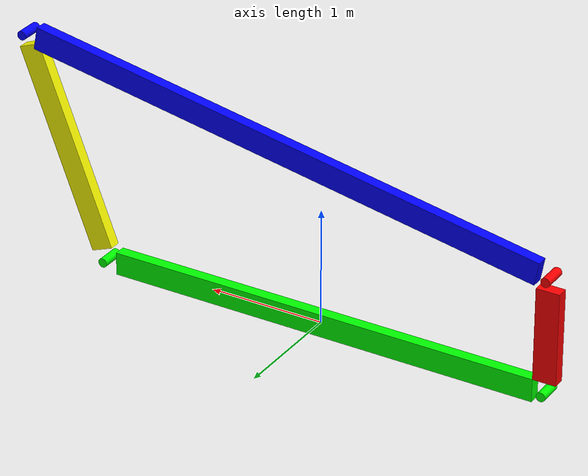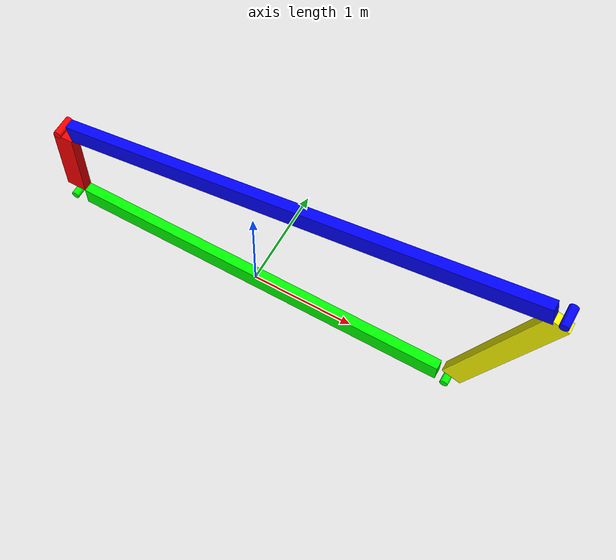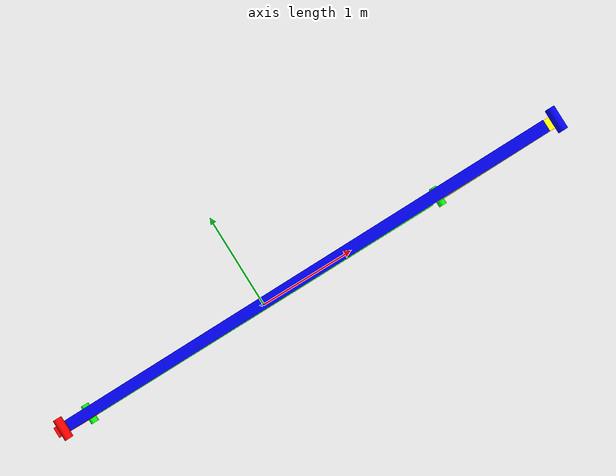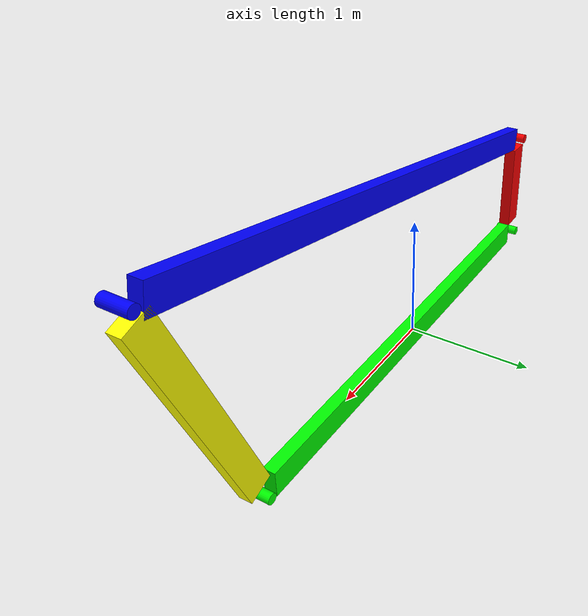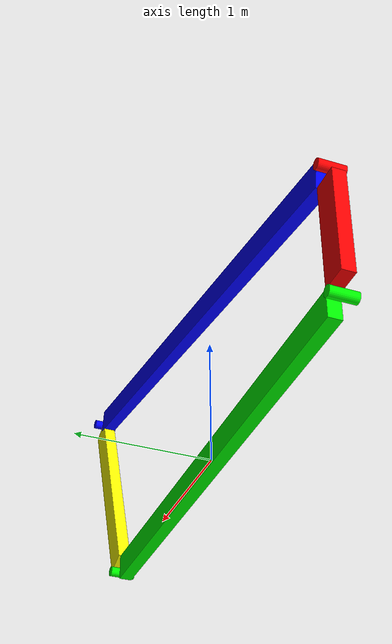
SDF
<?xml version="1.0"?>
<sdf version="1.7">
  <model name="four_bar">

    <link name="ground">
      <inertial>
        <mass>0</mass>
        <inertia>
          <ixx>0</ixx> <iyy>0</iyy> <izz>0</izz>
          <ixy>0</ixy> <ixz>0</ixz> <iyz>0</iyz>
        </inertia>
      </inertial>
      <visual name="ground_bar">
        <geometry>
          <box>
            <size>3.8 0.1 0.2</size>
          </box>
        </geometry>
        <material>
          <diffuse>0 1 0 1</diffuse>
        </material>
      </visual>
      <!-- The revolute axes are along y, while a cylinder's own axis is z, so
      the pins are rolled a quarter turn about x to match. -->
      <visual name="world_driver_pin">
        <pose>-2 0 0 1.5707963267948966 0 0</pose>
        <geometry>
          <cylinder>
            <radius>0.04</radius>
            <length>0.2</length>
          </cylinder>
        </geometry>
        <material>
          <diffuse>0 1 0 1</diffuse>
        </material>
      </visual>
      <visual name="world_rocker_pin">
        <pose>2 0 0 1.5707963267948966 0 0</pose>
        <geometry>
          <cylinder>
            <radius>0.04</radius>
            <length>0.2</length>
          </cylinder>
        </geometry>
        <material>
          <diffuse>0 1 0 1</diffuse>
        </material>
      </visual>
    </link>
    <joint name="world_ground_weld" type="fixed">
      <parent>world</parent>
      <child>ground</child>
    </joint>

    <frame name="Wd" attached_to="ground">
      <pose relative_to="ground">-2 0 0 0 0 0</pose>
    </frame>
    <frame name="Wr" attached_to="ground">
      <pose relative_to="ground">2 0 0 0 0 0</pose>
    </frame>

    <link name="driver">
      <pose>-2 0 0 0 0 0</pose>
      <inertial>
        <pose>0 0 0.5 0 0 0</pose>
        <mass>1</mass>
        <inertia>
          <ixx>0.0833333333333333</ixx>
          <iyy>0.0833333333333333</iyy>
          <izz>0</izz>
          <ixy>0</ixy> <ixz>0</ixz> <iyz>0</iyz>
        </inertia>
      </inertial>
      <visual name="driver_bar">
        <pose>0 0 0.5 0 0 0</pose>
        <geometry>
          <box>
            <size>0.2 0.1 0.8</size>
          </box>
        </geometry>
        <material>
          <diffuse>1 0 0 1</diffuse>
        </material>
      </visual>
      <visual name="driver_coupler_pin">
        <pose>0 0 1 1.5707963267948966 0 0</pose>
        <geometry>
          <cylinder>
            <radius>0.04</radius>
            <length>0.2</length>
          </cylinder>
        </geometry>
        <material>
          <diffuse>1 0 0 1</diffuse>
        </material>
      </visual>
    </link>
    <frame name="Dc" attached_to="driver">
      <pose relative_to="driver">0 0 1 0 0 0</pose>
    </frame>

    <!-- The coupler, a thin rod running along its own x from Cd to Cr, with
    its link frame Co at the middle. Its pose puts Co midway between Dc and Rc,
    pitched so that Cd lands on Dc and Cr on Rc. -->
    <link name="coupler">
      <pose>0.360673075793211 0 1.432692303172844 0 -0.181279708531571 0</pose>
      <inertial>
        <mass>1</mass>
        <inertia>
          <ixx>0</ixx>
          <iyy>1.92</iyy>
          <izz>1.92</izz>
          <ixy>0</ixy> <ixz>0</ixz> <iyz>0</iyz>
        </inertia>
      </inertial>
      <visual name="coupler_bar">
        <geometry>
          <box>
            <size>4.6 0.1 0.2</size>
          </box>
        </geometry>
        <material>
          <diffuse>0 0 1 1</diffuse>
        </material>
      </visual>
      <visual name="coupler_rocker_pin">
        <pose>2.4 0 0 1.5707963267948966 0 0</pose>
        <geometry>
          <cylinder>
            <radius>0.04</radius>
            <length>0.2</length>
          </cylinder>
        </geometry>
        <material>
          <diffuse>0 0 1 1</diffuse>
        </material>
      </visual>
    </link>
    <frame name="Cd" attached_to="coupler">
      <pose relative_to="coupler">-2.4 0 0 0 0 0</pose>
    </frame>
    <frame name="Cr" attached_to="coupler">
      <pose relative_to="coupler">2.4 0 0 0 0 0</pose>
    </frame>

    <!-- The rocker, a thin rod from its own link frame Ro along +z to Rc. Its
    pose puts Ro at Wr, pitched so that Rc is exactly the coupler's length away
    from Dc. -->
    <link name="rocker">
      <pose>2 0 0 0 0.368989441111603 0</pose>
      <inertial>
        <pose>0 0 1 0 0 0</pose>
        <mass>2</mass>
        <inertia>
          <ixx>0.6666666666666667</ixx>
          <iyy>0.6666666666666667</iyy>
          <izz>0</izz>
          <ixy>0</ixy> <ixz>0</ixz> <iyz>0</iyz>
        </inertia>
      </inertial>
      <visual name="rocker_bar">
        <pose>0 0 1 0 0 0</pose>
        <geometry>
          <box>
            <size>0.2 0.1 1.8</size>
          </box>
        </geometry>
        <material>
          <diffuse>1 1 0 1</diffuse>
        </material>
      </visual>
    </link>
    <frame name="Rc" attached_to="rocker">
      <pose relative_to="rocker">0 0 2 0 0 0</pose>
    </frame>

    <joint name="world_driver" type="revolute">
      <parent>Wd</parent>
      <child>driver</child>
      <axis>
        <xyz expressed_in="__model__">0 -1 0</xyz>
        <limit>
          <!-- No effort limit provided. SDFormat defaults to -1, which we
               parse as an actuated joint. -->
        </limit>
      </axis>
    </joint>

    <joint name="world_rocker" type="revolute">
      <parent>Wr</parent>
      <child>rocker</child>
      <axis>
        <xyz expressed_in="__model__">0 -1 0</xyz>
        <limit>
          <!-- An effort of 0 is parsed as an unactuated joint. -->
          <effort>0</effort>
        </limit>
      </axis>
    </joint>

    <joint name="driver_coupler" type="revolute">
      <parent>Dc</parent>
      <child>Cd</child>
      <axis>
        <xyz expressed_in="__model__">0 -1 0</xyz>
        <limit>
          <!-- An effort of 0 is parsed as an unactuated joint. -->
          <effort>0</effort>
        </limit>
      </axis>
    </joint>

    <joint name="coupler_rocker" type="revolute">
      <parent>Cr</parent>
      <child>Rc</child>
      <axis>
        <xyz expressed_in="__model__">0 -1 0</xyz>
        <limit>
          <!-- An effort of 0 is parsed as an unactuated joint. -->
          <effort>0</effort>
        </limit>
      </axis>
    </joint>

  </model>
</sdf>
